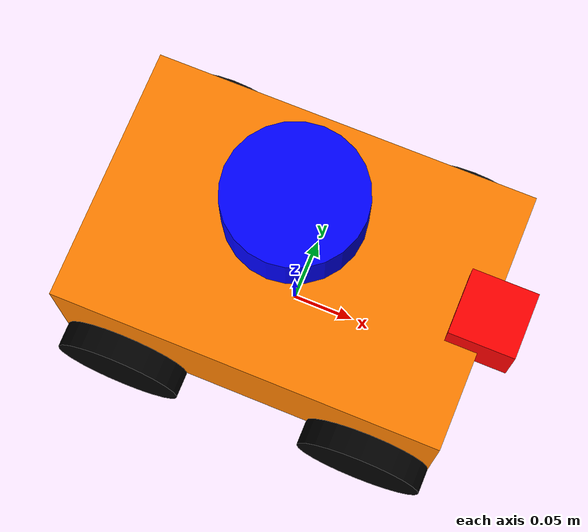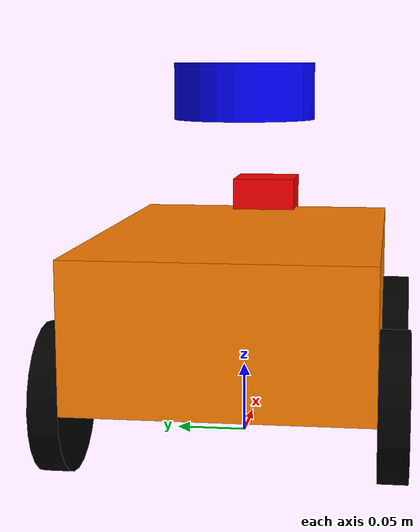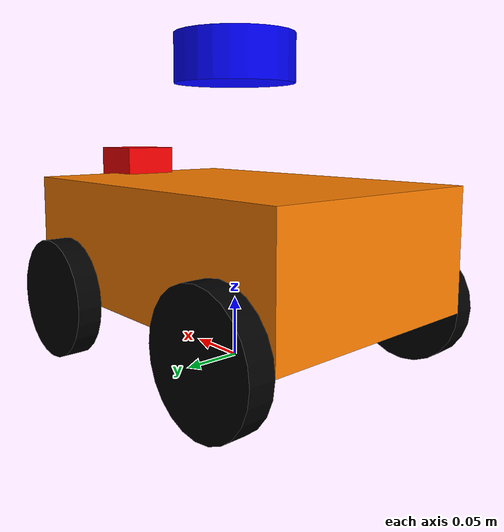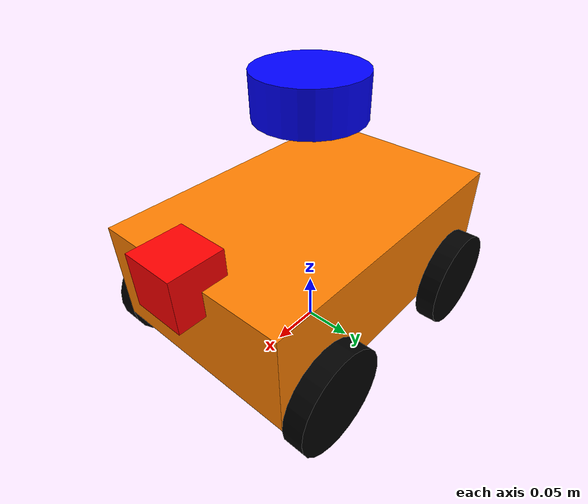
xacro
<?xml version="1.0"?>
<robot name="four_ws_cart" xmlns:xacro="http://www.ros.org/wiki/xacro">

  <!-- Includes -->
  <xacro:include filename="$(find lidar_cart)/urdf/lidar.xacro"/>
  <xacro:include filename="$(find lidar_cart)/urdf/camera.xacro"/>
  <xacro:include filename="$(find lidar_cart)/urdf/imu.xacro"/>

  <!-- Properties -->
  <xacro:property name="chassis_length" value="0.3"/>
  <xacro:property name="chassis_width" value="0.2"/>
  <xacro:property name="chassis_height" value="0.1"/>
  <xacro:property name="wheel_radius" value="0.05"/>
  <xacro:property name="wheel_width" value="0.02"/>

  <!-- Base Footprint -->
  <link name="base_footprint"/>

  <joint name="base_joint" type="fixed">
    <parent link="base_footprint"/>
    <child link="base_link"/>
    <origin xyz="0 0 ${wheel_radius}" rpy="0 0 0"/>
  </joint>

  <!-- Base Link -->
  <link name="base_link">
    <visual>
      <geometry>
        <box size="${chassis_length} ${chassis_width} ${chassis_height}"/>
      </geometry>
      <origin xyz="0 0 ${chassis_height/2}" rpy="0 0 0"/>
      <material name="orange">
        <color rgba="1.0 0.5 0.0 1"/>
      </material>
    </visual>
    <collision>
      <geometry>
        <box size="${chassis_length} ${chassis_width} ${chassis_height}"/>
      </geometry>
      <origin xyz="0 0 ${chassis_height/2}" rpy="0 0 0"/>
    </collision>
    <inertial>
      <mass value="2.0"/>
      <origin xyz="0 0 ${chassis_height/2}"/>
      <inertia ixx="0.01" ixy="0" ixz="0" iyy="0.01" iyz="0" izz="0.01"/>
    </inertial>
  </link>

  <!-- Wheels Macro -->
  <xacro:macro name="wheel" params="prefix x_offset y_offset">
    <link name="${prefix}_wheel">
      <visual>
        <geometry>
          <cylinder radius="${wheel_radius}" length="${wheel_width}"/>
        </geometry>
        <material name="black">
          <color rgba="0 0 0 1"/>
        </material>
      </visual>
      <collision>
        <geometry>
          <cylinder radius="${wheel_radius}" length="${wheel_width}"/>
        </geometry>
      </collision>
      <inertial>
        <mass value="0.5"/>
        <inertia ixx="0.001" ixy="0" ixz="0" iyy="0.001" iyz="0" izz="0.001"/>
      </inertial>
    </link>

    <joint name="${prefix}_wheel_joint" type="fixed">
      <parent link="base_link"/>
      <child link="${prefix}_wheel"/>
      <origin xyz="${x_offset} ${y_offset} 0" rpy="${-pi/2} 0 0"/>
    </joint>

    <gazebo reference="${prefix}_wheel">
      <mu1>0.0</mu1>
      <mu2>0.0</mu2>
      <material>Gazebo/Black</material>
    </gazebo>
  </xacro:macro>

  <xacro:wheel prefix="front_left" x_offset="${chassis_length/2 - 0.05}" y_offset="${chassis_width/2 + wheel_width/2}"/>
  <xacro:wheel prefix="front_right" x_offset="${chassis_length/2 - 0.05}" y_offset="-${chassis_width/2 + wheel_width/2}"/>
  <xacro:wheel prefix="rear_left"  x_offset="-${chassis_length/2 - 0.05}" y_offset="${chassis_width/2 + wheel_width/2}"/>
  <xacro:wheel prefix="rear_right" x_offset="-${chassis_length/2 - 0.05}" y_offset="-${chassis_width/2 + wheel_width/2}"/>

  <!-- Lidar -->
  <xacro:lidar_sensor parent_link="base_link" x_offset="0" z_offset="${chassis_height + 0.1}"/>

  <!-- Camera -->
  <xacro:camera_sensor parent_link="base_link" x_offset="${chassis_length/2}" z_offset="${chassis_height}"/>

  <!-- IMU -->
  <xacro:imu_sensor parent_link="base_link" x_offset="0" y_offset="0" z_offset="${chassis_height/2}"/>

  <!-- Planar Move Plugin -->
  <gazebo>
    <plugin name="object_controller" filename="libgazebo_ros_planar_move.so">
      <command_topic>cmd_vel</command_topic>
      <odometry_topic>odom</odometry_topic>
      <odometry_frame>odom</odometry_frame>
      <odometry_rate>20.0</odometry_rate>
      <robot_base_frame>base_footprint</robot_base_frame>
    </plugin>
  </gazebo>

</robot>

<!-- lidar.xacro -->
<robot xmlns:xacro="http://www.ros.org/wiki/xacro">

  <xacro:macro name="lidar_sensor" params="parent_link x_offset z_offset">

    <link name="lidar_link">
      <visual>
        <geometry>
          <cylinder radius="0.05" length="0.04"/>
        </geometry>
        <material name="blue">
          <color rgba="0 0 1 1"/>
        </material>
      </visual>
      <collision>
        <geometry>
          <cylinder radius="0.05" length="0.04"/>
        </geometry>
      </collision>
      <inertial>
        <mass value="0.1"/>
        <inertia ixx="0.0001" ixy="0" ixz="0" iyy="0.0001" iyz="0" izz="0.0001"/>
      </inertial>
    </link>

    <joint name="lidar_joint" type="fixed">
      <parent link="${parent_link}"/>
      <child link="lidar_link"/>
      <origin xyz="${x_offset} 0 ${z_offset}" rpy="0 0 0"/>
    </joint>

    <gazebo reference="lidar_link">
      <sensor name="lidar" type="ray">
        <pose>0 0 0 0 0 0</pose>
        <always_on>true</always_on>
        <visualize>true</visualize>
        <update_rate>10</update_rate>
        <ray>
          <scan>
            <horizontal>
              <samples>360</samples>
              <resolution>1</resolution>
              <min_angle>-3.14159</min_angle>
              <max_angle>3.14159</max_angle>
            </horizontal>
          </scan>
          <range>
            <min>0.10</min>
            <max>10.0</max>
            <resolution>0.01</resolution>
          </range>
          <noise>
            <type>gaussian</type>
            <mean>0.0</mean>
            <stddev>0.01</stddev>
          </noise>
        </ray>
        <plugin name="scan" filename="libgazebo_ros_ray_sensor.so">
          <ros>
            <remapping>~/out:=scan</remapping>
          </ros>
          <output_type>sensor_msgs/LaserScan</output_type>
          <frame_name>lidar_link</frame_name>
        </plugin>
      </sensor>
    </gazebo>

  </xacro:macro>
</robot>

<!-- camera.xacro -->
<robot xmlns:xacro="http://www.ros.org/wiki/xacro">

  <xacro:macro name="camera_sensor" params="parent_link x_offset z_offset">

    <link name="camera_link">
      <visual>
        <geometry>
          <box size="0.05 0.05 0.05"/>
        </geometry>
        <material name="red">
          <color rgba="1 0 0 1"/>
        </material>
      </visual>
      <collision>
        <geometry>
          <box size="0.05 0.05 0.05"/>
        </geometry>
      </collision>
      <inertial>
        <mass value="0.1"/>
        <inertia ixx="0.0001" ixy="0" ixz="0" iyy="0.0001" iyz="0" izz="0.0001"/>
      </inertial>
    </link>

    <joint name="camera_joint" type="fixed">
      <parent link="${parent_link}"/>
      <child link="camera_link"/>
      <origin xyz="${x_offset} 0 ${z_offset}" rpy="0 0 0"/>
    </joint>

    <gazebo reference="camera_link">
      <sensor name="camera" type="camera">
        <pose>0 0 0 0 0 0</pose>
        <always_on>true</always_on>
        <update_rate>30</update_rate>
        <visualize>true</visualize>
        <camera>
          <horizontal_fov>1.047</horizontal_fov>
          <image>
            <width>640</width>
            <height>480</height>
            <format>R8G8B8</format>
          </image>
          <clip>
            <near>0.1</near>
            <far>100</far>
          </clip>
        </camera>
        <plugin name="camera_controller" filename="libgazebo_ros_camera.so">
          <frame_name>camera_link</frame_name>
        </plugin>
      </sensor>
      <material>Gazebo/Red</material>
    </gazebo>

  </xacro:macro>
</robot>

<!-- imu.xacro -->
<robot xmlns:xacro="http://www.ros.org/wiki/xacro">

  <xacro:macro name="imu_sensor" params="parent_link x_offset y_offset z_offset">

    <link name="imu_link">
      <visual>
        <geometry>
          <box size="0.02 0.02 0.02"/>
        </geometry>
        <material name="green">
          <color rgba="0 1 0 1"/>
        </material>
      </visual>
      <collision>
        <geometry>
          <box size="0.02 0.02 0.02"/>
        </geometry>
      </collision>
      <inertial>
        <mass value="0.05"/>
        <inertia ixx="0.00001" ixy="0" ixz="0" iyy="0.00001" iyz="0" izz="0.00001"/>
      </inertial>
    </link>

    <joint name="imu_joint" type="fixed">
      <parent link="${parent_link}"/>
      <child link="imu_link"/>
      <origin xyz="${x_offset} ${y_offset} ${z_offset}" rpy="0 0 0"/>
    </joint>

    <gazebo reference="imu_link">
      <sensor name="imu" type="imu">
        <always_on>true</always_on>
        <update_rate>100</update_rate>
        <visualize>true</visualize>
        <plugin name="imu_plugin" filename="libgazebo_ros_imu_sensor.so">
          <ros>
            <remapping>~/out:=imu/data</remapping>
          </ros>
          <frame_name>imu_link</frame_name>
        </plugin>
      </sensor>
      <material>Gazebo/Green</material>
    </gazebo>

  </xacro:macro>
</robot>
